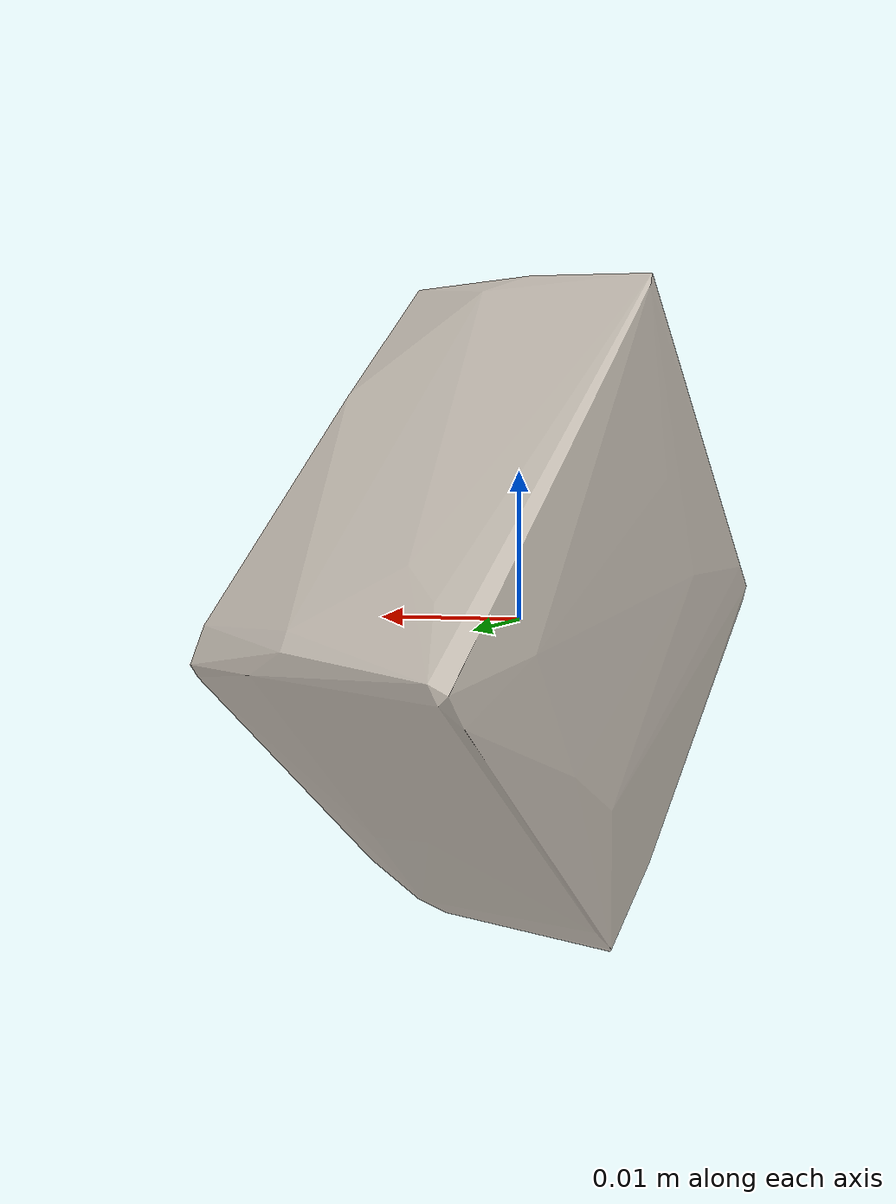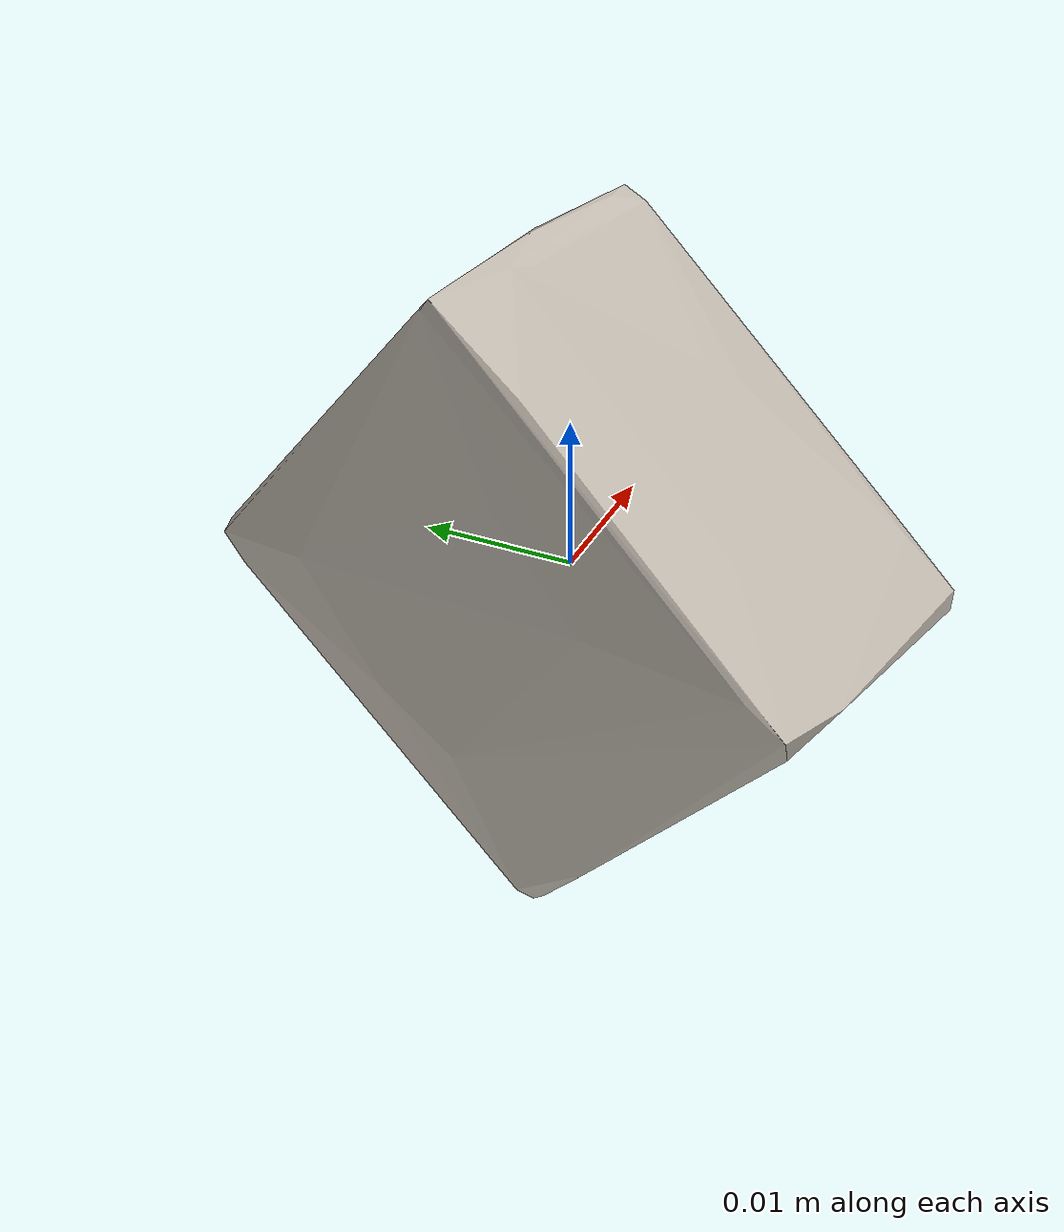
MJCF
<mujoco model="Rusk">
  <asset>
    <mesh file="meshes/Rusk/Rusk_0.stl" name="Rusk_0"/>
    <texture file="../textures/bread.png" name="tex-bread" />
    <material name="bread" reflectance="0.7" texrepeat="15 15" texture="tex-bread" texuniform="true"/>
  </asset>
  <worldbody>
    <body>
      <body name="collision">
        <geom condim="4" density="100" friction="1.5 0.3 0.1" group="1" mesh="Rusk_0" pos="0 0 0" material="bread" solimp="0.998 0.998 0.001" solref="0.002 1" type="mesh"/>
      </body>
      <body name="visual">
        <geom conaffinity="0" contype="0" group="0" mass="0.0001" mesh="Rusk_0" pos="0 0 0" rgba="0 1 0 1" type="mesh"/>
      </body>
      <site name="bottom_site" pos="0 0 -0.06" rgba="0 0 0 0" size="0.005"/>
      <site name="top_site" pos="0 0 0.04" rgba="0 0 0 0" size="0.005"/>
      <site name="horizontal_radius_site" pos="0.025 0.025 0" rgba="0 0 0 0" size="0.005"/>
    </body>
  </worldbody>
</mujoco>
